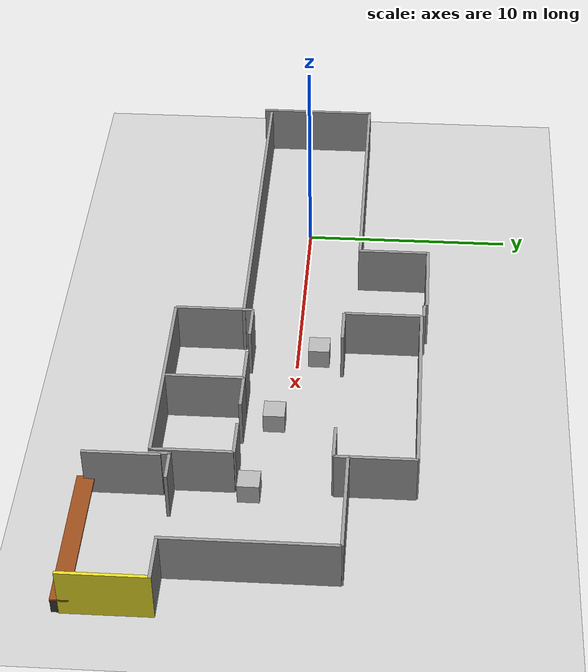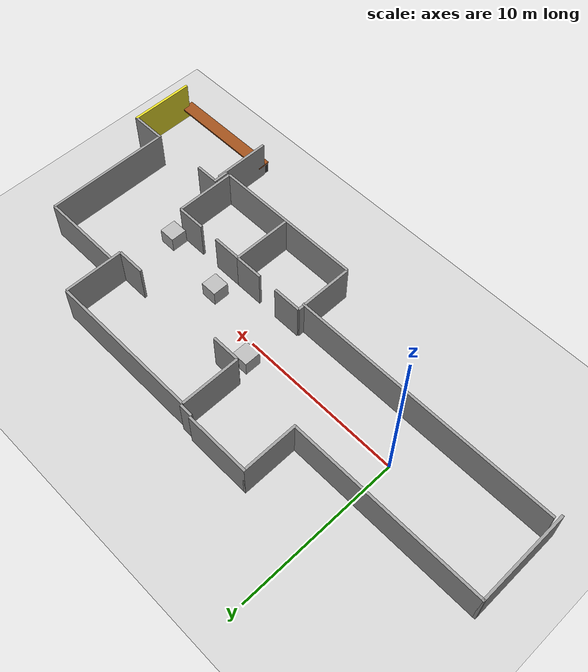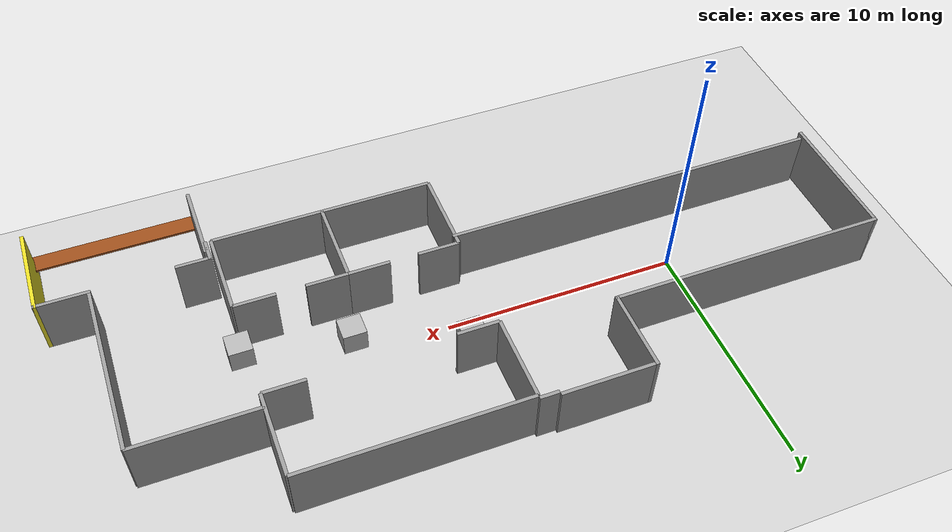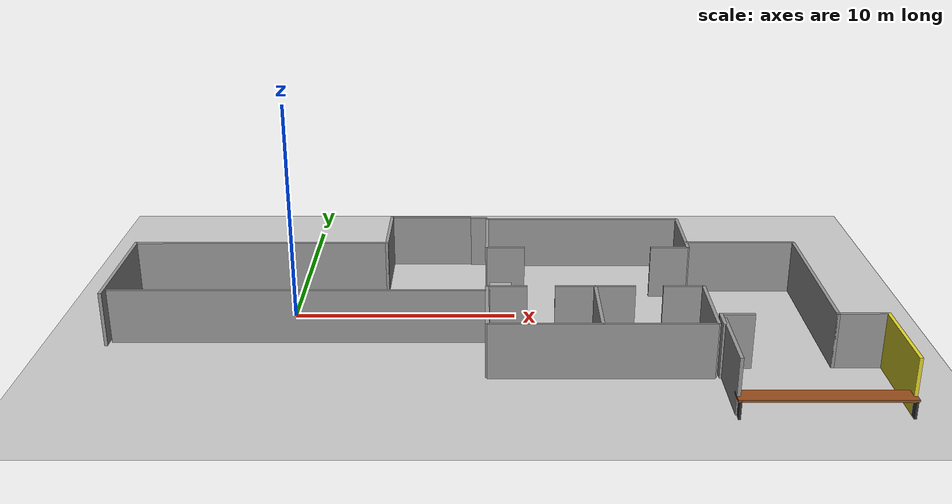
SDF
<sdf version='1.10'>
  <world name='warehouse_world'>
    <gravity>0 0 -9.8000000000000007</gravity>
    <magnetic_field>5.5644999999999998e-06 2.2875799999999999e-05 -4.2388400000000002e-05</magnetic_field>
    <atmosphere type='adiabatic'/>
    <physics type='ode'>
      <max_step_size>0.001</max_step_size>
      <real_time_factor>1</real_time_factor>
      <real_time_update_rate>1000</real_time_update_rate>
    </physics>
    <scene>
      <ambient>0.400000006 0.400000006 0.400000006 1</ambient>
      <background>0.699999988 0.699999988 0.699999988 1</background>
      <shadows>true</shadows>
    </scene>
    <model name='ground_plane'>
      <static>true</static>
      <link name='link'>
        <collision name='collision'>
          <geometry>
            <plane>
              <normal>0 0 1</normal>
              <size>100 100</size>
            </plane>
          </geometry>
          <surface>
            <friction>
              <ode/>
            </friction>
            <bounce/>
            <contact/>
          </surface>
        </collision>
        <visual name='visual'>
          <geometry>
            <plane>
              <normal>0 0 1</normal>
              <size>100 100</size>
            </plane>
          </geometry>
          <material>
            <ambient>0.800000012 0.800000012 0.800000012 1</ambient>
            <diffuse>0.800000012 0.800000012 0.800000012 1</diffuse>
            <specular>0.800000012 0.800000012 0.800000012 1</specular>
          </material>
        </visual>
        <pose>0 0 0 0 0 0</pose>
        <inertial>
          <pose>0 0 0 0 0 0</pose>
          <mass>1</mass>
          <inertia>
            <ixx>1</ixx>
            <ixy>0</ixy>
            <ixz>0</ixz>
            <iyy>1</iyy>
            <iyz>0</iyz>
            <izz>1</izz>
          </inertia>
        </inertial>
        <enable_wind>false</enable_wind>
      </link>
      <pose>0 0 0 0 0 0</pose>
      <self_collide>false</self_collide>
    </model>
    <model name='warehouse'>
      <pose>8.7374600000000058 -1.3317999999999914 0 0 0 1.4432899320127035e-15</pose>
      <link name='Wall_11'>
        <collision name='Wall_11_Collision'>
          <geometry>
            <box>
              <size>3.5 0.14999999999999999 2.5</size>
            </box>
          </geometry>
          <pose>0 0 1.25 0 0 0</pose>
          <surface>
            <friction>
              <ode/>
            </friction>
            <bounce/>
            <contact/>
          </surface>
        </collision>
        <visual name='Wall_11_Visual'>
          <pose>0 0 1.25 0 0 0</pose>
          <geometry>
            <box>
              <size>3.5 0.14999999999999999 2.5</size>
            </box>
          </geometry>
          <material>
            <script>
              <uri>file://media/materials/scripts/gazebo.material</uri>
              <name>Gazebo/Grey</name>
            </script>
            <ambient>1 1 1 1</ambient>
          </material>
          <meta>
            <layer>0</layer>
          </meta>
        </visual>
        <pose>-4.7249999999999996 5.7249999999999996 0 0 0 1.5708</pose>
        <inertial>
          <pose>0 0 0 0 0 0</pose>
          <mass>1</mass>
          <inertia>
            <ixx>1</ixx>
            <ixy>0</ixy>
            <ixz>0</ixz>
            <iyy>1</iyy>
            <iyz>0</iyz>
            <izz>1</izz>
          </inertia>
        </inertial>
        <enable_wind>false</enable_wind>
      </link>
      <link name='Wall_12'>
        <collision name='Wall_12_Collision'>
          <geometry>
            <box>
              <size>4 0.14999999999999999 2.5</size>
            </box>
          </geometry>
          <pose>0 0 1.25 0 0 0</pose>
          <surface>
            <friction>
              <ode/>
            </friction>
            <bounce/>
            <contact/>
          </surface>
        </collision>
        <visual name='Wall_12_Visual'>
          <pose>0 0 1.25 0 0 0</pose>
          <geometry>
            <box>
              <size>4 0.14999999999999999 2.5</size>
            </box>
          </geometry>
          <material>
            <script>
              <uri>file://media/materials/scripts/gazebo.material</uri>
              <name>Gazebo/Grey</name>
            </script>
            <ambient>1 1 1 1</ambient>
          </material>
          <meta>
            <layer>0</layer>
          </meta>
        </visual>
        <pose>-2.7999999999999909 7.3999999999999959 0 0 0 -1.4432899320127037e-15</pose>
        <inertial>
          <pose>0 0 0 0 0 0</pose>
          <mass>1</mass>
          <inertia>
            <ixx>1</ixx>
            <ixy>0</ixy>
            <ixz>0</ixz>
            <iyy>1</iyy>
            <iyz>0</iyz>
            <izz>1</izz>
          </inertia>
        </inertial>
        <enable_wind>false</enable_wind>
      </link>
      <link name='Connector_North_12'>
        <pose>-0.39999999999999503 7.2799999999999923 0 0 0 -1.4432899320127037e-15</pose>
        <collision name='c'>
          <geometry>
            <box>
              <size>0.80000000000000004 0.14999999999999999 2.5</size>
            </box>
          </geometry>
          <pose>0 0 1.25 0 0 0</pose>
          <surface>
            <friction>
              <ode/>
            </friction>
            <bounce/>
            <contact/>
          </surface>
        </collision>
        <visual name='v'>
          <geometry>
            <box>
              <size>0.80000000000000004 0.14999999999999999 2.5</size>
            </box>
          </geometry>
          <pose>0 0 1.25 0 0 0</pose>
          <material>
            <script>
              <uri>file://media/materials/scripts/gazebo.material</uri>
              <name>Gazebo/Grey</name>
            </script>
          </material>
        </visual>
        <inertial>
          <pose>0 0 0 0 0 0</pose>
          <mass>1</mass>
          <inertia>
            <ixx>1</ixx>
            <ixy>0</ixy>
            <ixz>0</ixz>
            <iyy>1</iyy>
            <iyz>0</iyz>
            <izz>1</izz>
          </inertia>
        </inertial>
        <enable_wind>false</enable_wind>
      </link>
      <link name='Wall_15'>
        <collision name='Wall_15_Collision'>
          <geometry>
            <box>
              <size>7.75 0.14999999999999999 2.5</size>
            </box>
          </geometry>
          <pose>0 0 1.25 0 0 0</pose>
          <surface>
            <friction>
              <ode/>
            </friction>
            <bounce/>
            <contact/>
          </surface>
        </collision>
        <visual name='Wall_15_Visual'>
          <pose>0 0 1.25 0 0 0</pose>
          <geometry>
            <box>
              <size>7.75 0.14999999999999999 2.5</size>
            </box>
          </geometry>
          <material>
            <script>
              <uri>file://media/materials/scripts/gazebo.material</uri>
              <name>Gazebo/Grey</name>
            </script>
            <ambient>1 1 1 1</ambient>
          </material>
          <meta>
            <layer>0</layer>
          </meta>
        </visual>
        <pose>14.475000000000003 0.24999999999997047 0 0 0 -1.5708000000000026</pose>
        <inertial>
          <pose>0 0 0 0 0 0</pose>
          <mass>1</mass>
          <inertia>
            <ixx>1</ixx>
            <ixy>0</ixy>
            <ixz>0</ixz>
            <iyy>1</iyy>
            <iyz>0</iyz>
            <izz>1</izz>
          </inertia>
        </inertial>
        <enable_wind>false</enable_wind>
      </link>
      <link name='Wall_16'>
        <collision name='Wall_16_Collision'>
          <geometry>
            <box>
              <size>2.25 0.14999999999999999 2.5</size>
            </box>
          </geometry>
          <pose>0 0 1.25 0 0 0</pose>
          <surface>
            <friction>
              <ode/>
            </friction>
            <bounce/>
            <contact/>
          </surface>
        </collision>
        <visual name='Wall_16_Visual'>
          <pose>0 0 1.25 0 0 0</pose>
          <geometry>
            <box>
              <size>2.25 0.14999999999999999 2.5</size>
            </box>
          </geometry>
          <material>
            <script>
              <uri>file://media/materials/scripts/gazebo.material</uri>
              <name>Gazebo/Grey</name>
            </script>
            <ambient>1 1 1 1</ambient>
          </material>
          <meta>
            <layer>0</layer>
          </meta>
        </visual>
        <pose>15.524999999999993 -3.5500000000000318 0 0 0 -1.4432899320127037e-15</pose>
        <inertial>
          <pose>0 0 0 0 0 0</pose>
          <mass>1</mass>
          <inertia>
            <ixx>1</ixx>
            <ixy>0</ixy>
            <ixz>0</ixz>
            <iyy>1</iyy>
            <iyz>0</iyz>
            <izz>1</izz>
          </inertia>
        </inertial>
        <enable_wind>false</enable_wind>
      </link>
      <link name='Wall_17'>
        <collision name='Wall_17_Collision'>
          <geometry>
            <box>
              <size>4 0.14999999999999999 2.5</size>
            </box>
          </geometry>
          <pose>0 0 1.25 0 0 0</pose>
          <surface>
            <friction>
              <ode/>
            </friction>
            <bounce/>
            <contact/>
          </surface>
        </collision>
        <visual name='Wall_17_Visual'>
          <pose>0 0 1.25 0 0 0</pose>
          <geometry>
            <box>
              <size>4 0.14999999999999999 2.5</size>
            </box>
          </geometry>
          <material>
            <script>
              <uri>file://media/materials/scripts/gazebo.material</uri>
              <name>Gazebo/Yellow</name>
            </script>
            <ambient>1 1 1 1</ambient>
          </material>
          <meta>
            <layer>0</layer>
          </meta>
        </visual>
        <pose>16.574999999999989 -5.4750000000000325 0 0 0 -1.5708000000000026</pose>
        <inertial>
          <pose>0 0 0 0 0 0</pose>
          <mass>1</mass>
          <inertia>
            <ixx>1</ixx>
            <ixy>0</ixy>
            <ixz>0</ixz>
            <iyy>1</iyy>
            <iyz>0</iyz>
            <izz>1</izz>
          </inertia>
        </inertial>
        <enable_wind>false</enable_wind>
      </link>
      <link name='IT_Service_Table'>
        <pose>13.149999999999986 -7.4000000000000314 0 0 0 3.1415899999999986</pose>
        <collision name='solid_base_collision'>
          <pose>0 0 0.40000000000000002 0 0 0</pose>
          <geometry>
            <box>
              <size>7 0.80000000000000004 0.80000000000000004</size>
            </box>
          </geometry>
          <surface>
            <friction>
              <ode/>
            </friction>
            <bounce/>
            <contact/>
          </surface>
        </collision>
        <visual name='visual_top'>
          <pose>0 0 0.80000000000000004 0 0 0</pose>
          <geometry>
            <box>
              <size>7 0.80000000000000004 0.10000000000000001</size>
            </box>
          </geometry>
          <material>
            <ambient>0.600000024 0.300000012 0.100000001 1</ambient>
            <diffuse>0.600000024 0.300000012 0.100000001 1</diffuse>
          </material>
        </visual>
        <visual name='visual_leg1'>
          <pose>-3.3999999999999999 0 0.40000000000000002 0 0 0</pose>
          <geometry>
            <box>
              <size>0.10000000000000001 0.80000000000000004 0.80000000000000004</size>
            </box>
          </geometry>
          <material>
            <ambient>0.200000003 0.200000003 0.200000003 1</ambient>
          </material>
        </visual>
        <visual name='visual_leg2'>
          <pose>3.3999999999999999 0 0.40000000000000002 0 0 0</pose>
          <geometry>
            <box>
              <size>0.10000000000000001 0.80000000000000004 0.80000000000000004</size>
            </box>
          </geometry>
          <material>
            <ambient>0.200000003 0.200000003 0.200000003 1</ambient>
          </material>
        </visual>
        <inertial>
          <pose>0 0 0 0 0 0</pose>
          <mass>1</mass>
          <inertia>
            <ixx>1</ixx>
            <ixy>0</ixy>
            <ixz>0</ixz>
            <iyy>1</iyy>
            <iyz>0</iyz>
            <izz>1</izz>
          </inertia>
        </inertial>
        <enable_wind>false</enable_wind>
      </link>
      <link name='Wall_19'>
        <collision name='Wall_19_Collision'>
          <geometry>
            <box>
              <size>3.5 0.14999999999999999 2.5</size>
            </box>
          </geometry>
          <pose>0 0 1.25 0 0 0</pose>
          <surface>
            <friction>
              <ode/>
            </friction>
            <bounce/>
            <contact/>
          </surface>
        </collision>
        <visual name='Wall_19_Visual'>
          <pose>0 0 1.25 0 0 0</pose>
          <geometry>
            <box>
              <size>3.5 0.14999999999999999 2.5</size>
            </box>
          </geometry>
          <material>
            <script>
              <uri>file://media/materials/scripts/gazebo.material</uri>
              <name>Gazebo/Grey</name>
            </script>
            <ambient>1 1 1 1</ambient>
          </material>
          <meta>
            <layer>0</layer>
          </meta>
        </visual>
        <pose>9.724999999999989 -5.7250000000000218 0 0 0 1.5707999999999993</pose>
        <inertial>
          <pose>0 0 0 0 0 0</pose>
          <mass>1</mass>
          <inertia>
            <ixx>1</ixx>
            <ixy>0</ixy>
            <ixz>0</ixz>
            <iyy>1</iyy>
            <iyz>0</iyz>
            <izz>1</izz>
          </inertia>
        </inertial>
        <enable_wind>false</enable_wind>
      </link>
      <link name='Wall_28'>
        <collision name='Wall_28_Collision'>
          <geometry>
            <box>
              <size>16.5 0.14999999999999999 2.5</size>
            </box>
          </geometry>
          <pose>0 0 1.25 0 0 0</pose>
          <surface>
            <friction>
              <ode/>
            </friction>
            <bounce/>
            <contact/>
          </surface>
        </collision>
        <visual name='Wall_28_Visual'>
          <pose>0 0 1.25 0 0 0</pose>
          <geometry>
            <box>
              <size>16.5 0.14999999999999999 2.5</size>
            </box>
          </geometry>
          <material>
            <script>
              <uri>file://media/materials/scripts/gazebo.material</uri>
              <name>Gazebo/Grey</name>
            </script>
            <ambient>1 1 1 1</ambient>
          </material>
          <meta>
            <layer>0</layer>
          </meta>
        </visual>
        <pose>-8.1387900000000037 -1.2623699999999973 0 0 0 -1.4432899320127037e-15</pose>
        <inertial>
          <pose>0 0 0 0 0 0</pose>
          <mass>1</mass>
          <inertia>
            <ixx>1</ixx>
            <ixy>0</ixy>
            <ixz>0</ixz>
            <iyy>1</iyy>
            <iyz>0</iyz>
            <izz>1</izz>
          </inertia>
        </inertial>
        <enable_wind>false</enable_wind>
      </link>
      <link name='Wall_34'>
        <collision name='Wall_34_Collision'>
          <geometry>
            <box>
              <size>1.5 0.14999999999999999 2.5</size>
            </box>
          </geometry>
          <pose>0 0 1.25 0 0 0</pose>
          <surface>
            <friction>
              <ode/>
            </friction>
            <bounce/>
            <contact/>
          </surface>
        </collision>
        <visual name='Wall_34_Visual'>
          <pose>0 0 1.25 0 0 0</pose>
          <geometry>
            <box>
              <size>1.5 0.14999999999999999 2.5</size>
            </box>
          </geometry>
          <material>
            <script>
              <uri>file://media/materials/scripts/gazebo.material</uri>
              <name>Gazebo/Grey</name>
            </script>
            <ambient>1 1 1 1</ambient>
          </material>
          <meta>
            <layer>0</layer>
          </meta>
        </visual>
        <pose>10.311199999999987 -3.6123700000000225 0 0 0 3.1415899999999986</pose>
        <inertial>
          <pose>0 0 0 0 0 0</pose>
          <mass>1</mass>
          <inertia>
            <ixx>1</ixx>
            <ixy>0</ixy>
            <ixz>0</ixz>
            <iyy>1</iyy>
            <iyz>0</iyz>
            <izz>1</izz>
          </inertia>
        </inertial>
        <enable_wind>false</enable_wind>
      </link>
      <link name='Wall_35'>
        <collision name='Wall_35_Collision'>
          <geometry>
            <box>
              <size>1 0.14999999999999999 2.5</size>
            </box>
          </geometry>
          <pose>0 0 1.25 0 0 0</pose>
          <surface>
            <friction>
              <ode/>
            </friction>
            <bounce/>
            <contact/>
          </surface>
        </collision>
        <visual name='Wall_35_Visual'>
          <pose>0 0 1.25 0 0 0</pose>
          <geometry>
            <box>
              <size>1 0.14999999999999999 2.5</size>
            </box>
          </geometry>
          <material>
            <script>
              <uri>file://media/materials/scripts/gazebo.material</uri>
              <name>Gazebo/Grey</name>
            </script>
            <ambient>1 1 1 1</ambient>
          </material>
          <meta>
            <layer>0</layer>
          </meta>
        </visual>
        <pose>9.6362099999999895 -4.0373700000000232 0 0 0 -1.5708000000000026</pose>
        <inertial>
          <pose>0 0 0 0 0 0</pose>
          <mass>1</mass>
          <inertia>
            <ixx>1</ixx>
            <ixy>0</ixy>
            <ixz>0</ixz>
            <iyy>1</iyy>
            <iyz>0</iyz>
            <izz>1</izz>
          </inertia>
        </inertial>
        <enable_wind>false</enable_wind>
      </link>
      <link name='Wall_38'>
        <collision name='Wall_38_Collision'>
          <geometry>
            <box>
              <size>5.75 0.14999999999999999 2.5</size>
            </box>
          </geometry>
          <pose>0 0 1.25 0 0 0</pose>
          <surface>
            <friction>
              <ode/>
            </friction>
            <bounce/>
            <contact/>
          </surface>
        </collision>
        <visual name='Wall_38_Visual'>
          <pose>0 0 1.25 0 0 0</pose>
          <geometry>
            <box>
              <size>5.75 0.14999999999999999 2.5</size>
            </box>
          </geometry>
          <material>
            <script>
              <uri>file://media/materials/scripts/gazebo.material</uri>
              <name>Gazebo/Grey</name>
            </script>
            <ambient>1 1 1 1</ambient>
          </material>
          <meta>
            <layer>0</layer>
          </meta>
        </visual>
        <pose>-16.574999999999999 1.2500000000000151 0 0 0 -1.5708000000000026</pose>
        <inertial>
          <pose>0 0 0 0 0 0</pose>
          <mass>1</mass>
          <inertia>
            <ixx>1</ixx>
            <ixy>0</ixy>
            <ixz>0</ixz>
            <iyy>1</iyy>
            <iyz>0</iyz>
            <izz>1</izz>
          </inertia>
        </inertial>
        <enable_wind>false</enable_wind>
      </link>
      <link name='Wall_7'>
        <collision name='Wall_7_Collision'>
          <geometry>
            <box>
              <size>12 0.14999999999999999 2.5</size>
            </box>
          </geometry>
          <pose>0 0 1.25 0 0 0</pose>
          <surface>
            <friction>
              <ode/>
            </friction>
            <bounce/>
            <contact/>
          </surface>
        </collision>
        <visual name='Wall_7_Visual'>
          <pose>0 0 1.25 0 0 0</pose>
          <geometry>
            <box>
              <size>12 0.14999999999999999 2.5</size>
            </box>
          </geometry>
          <material>
            <script>
              <uri>file://media/materials/scripts/gazebo.material</uri>
              <name>Gazebo/Grey</name>
            </script>
            <ambient>1 1 1 1</ambient>
          </material>
          <meta>
            <layer>0</layer>
          </meta>
        </visual>
        <pose>-10.649999999999999 4.0500000000000069 0 0 0 -1.4432899320127037e-15</pose>
        <inertial>
          <pose>0 0 0 0 0 0</pose>
          <mass>1</mass>
          <inertia>
            <ixx>1</ixx>
            <ixy>0</ixy>
            <ixz>0</ixz>
            <iyy>1</iyy>
            <iyz>0</iyz>
            <izz>1</izz>
          </inertia>
        </inertial>
        <enable_wind>false</enable_wind>
      </link>
      <link name='Connector_Wall_15_East'>
        <pose>11.950000000000005 4.1249999999999734 0 0 0 -1.4432899320127037e-15</pose>
        <collision name='c'>
          <geometry>
            <box>
              <size>5.0999999999999996 0.14999999999999999 2.5</size>
            </box>
          </geometry>
          <pose>0 0 1.25 0 0 0</pose>
          <surface>
            <friction>
              <ode/>
            </friction>
            <bounce/>
            <contact/>
          </surface>
        </collision>
        <visual name='v'>
          <geometry>
            <box>
              <size>5.0999999999999996 0.14999999999999999 2.5</size>
            </box>
          </geometry>
          <pose>0 0 1.25 0 0 0</pose>
          <material>
            <script>
              <uri>file://media/materials/scripts/gazebo.material</uri>
              <name>Gazebo/Grey</name>
            </script>
          </material>
        </visual>
        <inertial>
          <pose>0 0 0 0 0 0</pose>
          <mass>1</mass>
          <inertia>
            <ixx>1</ixx>
            <ixy>0</ixy>
            <ixz>0</ixz>
            <iyy>1</iyy>
            <iyz>0</iyz>
            <izz>1</izz>
          </inertia>
        </inertial>
        <enable_wind>false</enable_wind>
      </link>
      <link name='Top_Block_North'>
        <pose>4.7000000000000046 7.159999999999985 0 0 0 -1.4432899320127037e-15</pose>
        <visual name='v'>
          <geometry>
            <box>
              <size>9.4000000000000004 0.14999999999999999 2.5</size>
            </box>
          </geometry>
          <pose>0 0 1.25 0 0 0</pose>
          <material>
            <script>
              <uri>file://media/materials/scripts/gazebo.material</uri>
              <name>Gazebo/Grey</name>
            </script>
          </material>
        </visual>
        <collision name='c'>
          <geometry>
            <box>
              <size>9.4000000000000004 0.14999999999999999 2.5</size>
            </box>
          </geometry>
          <pose>0 0 1.25 0 0 0</pose>
          <surface>
            <friction>
              <ode/>
            </friction>
            <bounce/>
            <contact/>
          </surface>
        </collision>
        <inertial>
          <pose>0 0 0 0 0 0</pose>
          <mass>1</mass>
          <inertia>
            <ixx>1</ixx>
            <ixy>0</ixy>
            <ixz>0</ixz>
            <iyy>1</iyy>
            <iyz>0</iyz>
            <izz>1</izz>
          </inertia>
        </inertial>
        <enable_wind>false</enable_wind>
      </link>
      <link name='Top_Block_West'>
        <pose>7.1054273576010019e-15 5.3299999999999912 0 0 0 1.5707999999999993</pose>
        <visual name='v'>
          <geometry>
            <box>
              <size>3.6600000000000001 0.14999999999999999 2.5</size>
            </box>
          </geometry>
          <pose>0 0 1.25 0 0 0</pose>
          <material>
            <script>
              <uri>file://media/materials/scripts/gazebo.material</uri>
              <name>Gazebo/Grey</name>
            </script>
          </material>
        </visual>
        <collision name='c'>
          <geometry>
            <box>
              <size>3.6600000000000001 0.14999999999999999 2.5</size>
            </box>
          </geometry>
          <pose>0 0 1.25 0 0 0</pose>
          <surface>
            <friction>
              <ode/>
            </friction>
            <bounce/>
            <contact/>
          </surface>
        </collision>
        <inertial>
          <pose>0 0 0 0 0 0</pose>
          <mass>1</mass>
          <inertia>
            <ixx>1</ixx>
            <ixy>0</ixy>
            <ixz>0</ixz>
            <iyy>1</iyy>
            <iyz>0</iyz>
            <izz>1</izz>
          </inertia>
        </inertial>
        <enable_wind>false</enable_wind>
      </link>
      <link name='Top_Block_East'>
        <pose>9.4000000000000039 5.3299999999999779 0 0 0 1.5707999999999993</pose>
        <visual name='v'>
          <geometry>
            <box>
              <size>3.6600000000000001 0.14999999999999999 2.5</size>
            </box>
          </geometry>
          <pose>0 0 1.25 0 0 0</pose>
          <material>
            <script>
              <uri>file://media/materials/scripts/gazebo.material</uri>
              <name>Gazebo/Grey</name>
            </script>
          </material>
        </visual>
        <collision name='c'>
          <geometry>
            <box>
              <size>3.6600000000000001 0.14999999999999999 2.5</size>
            </box>
          </geometry>
          <pose>0 0 1.25 0 0 0</pose>
          <surface>
            <friction>
              <ode/>
            </friction>
            <bounce/>
            <contact/>
          </surface>
        </collision>
        <inertial>
          <pose>0 0 0 0 0 0</pose>
          <mass>1</mass>
          <inertia>
            <ixx>1</ixx>
            <ixy>0</ixy>
            <ixz>0</ixz>
            <iyy>1</iyy>
            <iyz>0</iyz>
            <izz>1</izz>
          </inertia>
        </inertial>
        <enable_wind>false</enable_wind>
      </link>
      <link name='Top_Block_South_1a'>
        <pose>0.87500000000000178 3.4999999999999902 0 0 0 -1.4432899320127037e-15</pose>
        <visual name='v'>
          <geometry>
            <box>
              <size>1.75 0.14999999999999999 2.5</size>
            </box>
          </geometry>
          <pose>0 0 1.25 0 0 0</pose>
          <material>
            <script>
              <uri>file://media/materials/scripts/gazebo.material</uri>
              <name>Gazebo/Grey</name>
            </script>
          </material>
        </visual>
        <collision name='c'>
          <geometry>
            <box>
              <size>1.75 0.14999999999999999 2.5</size>
            </box>
          </geometry>
          <pose>0 0 1.25 0 0 0</pose>
          <surface>
            <friction>
              <ode/>
            </friction>
            <bounce/>
            <contact/>
          </surface>
        </collision>
        <inertial>
          <pose>0 0 0 0 0 0</pose>
          <mass>1</mass>
          <inertia>
            <ixx>1</ixx>
            <ixy>0</ixy>
            <ixz>0</ixz>
            <iyy>1</iyy>
            <iyz>0</iyz>
            <izz>1</izz>
          </inertia>
        </inertial>
        <enable_wind>false</enable_wind>
      </link>
      <link name='Top_Block_South_4b'>
        <pose>8.5249999999999968 3.4999999999999796 0 0 0 -1.4432899320127037e-15</pose>
        <visual name='v'>
          <geometry>
            <box>
              <size>1.75 0.14999999999999999 2.5</size>
            </box>
          </geometry>
          <pose>0 0 1.25 0 0 0</pose>
          <material>
            <script>
              <uri>file://media/materials/scripts/gazebo.material</uri>
              <name>Gazebo/Grey</name>
            </script>
          </material>
        </visual>
        <collision name='c'>
          <geometry>
            <box>
              <size>1.75 0.14999999999999999 2.5</size>
            </box>
          </geometry>
          <pose>0 0 1.25 0 0 0</pose>
          <surface>
            <friction>
              <ode/>
            </friction>
            <bounce/>
            <contact/>
          </surface>
        </collision>
        <inertial>
          <pose>0 0 0 0 0 0</pose>
          <mass>1</mass>
          <inertia>
            <ixx>1</ixx>
            <ixy>0</ixy>
            <ixz>0</ixz>
            <iyy>1</iyy>
            <iyz>0</iyz>
            <izz>1</izz>
          </inertia>
        </inertial>
        <enable_wind>false</enable_wind>
      </link>
      <link name='Bottom_Block_South'>
        <pose>4.699999999999994 -4.500000000000016 0 0 0 -1.4432899320127037e-15</pose>
        <visual name='v'>
          <geometry>
            <box>
              <size>9.4000000000000004 0.14999999999999999 2.5</size>
            </box>
          </geometry>
          <pose>0 0 1.25 0 0 0</pose>
          <material>
            <script>
              <uri>file://media/materials/scripts/gazebo.material</uri>
              <name>Gazebo/Grey</name>
            </script>
          </material>
        </visual>
        <collision name='c'>
          <geometry>
            <box>
              <size>9.4000000000000004 0.14999999999999999 2.5</size>
            </box>
          </geometry>
          <pose>0 0 1.25 0 0 0</pose>
          <surface>
            <friction>
              <ode/>
            </friction>
            <bounce/>
            <contact/>
          </surface>
        </collision>
        <inertial>
          <pose>0 0 0 0 0 0</pose>
          <mass>1</mass>
          <inertia>
            <ixx>1</ixx>
            <ixy>0</ixy>
            <ixz>0</ixz>
            <iyy>1</iyy>
            <iyz>0</iyz>
            <izz>1</izz>
          </inertia>
        </inertial>
        <enable_wind>false</enable_wind>
      </link>
      <link name='Bottom_Block_West'>
        <pose>-8.8817841970012523e-15 -2.6700000000000097 0 0 0 1.5707999999999993</pose>
        <visual name='v'>
          <geometry>
            <box>
              <size>3.6600000000000001 0.14999999999999999 2.5</size>
            </box>
          </geometry>
          <pose>0 0 1.25 0 0 0</pose>
          <material>
            <script>
              <uri>file://media/materials/scripts/gazebo.material</uri>
              <name>Gazebo/Grey</name>
            </script>
          </material>
        </visual>
        <collision name='c'>
          <geometry>
            <box>
              <size>3.6600000000000001 0.14999999999999999 2.5</size>
            </box>
          </geometry>
          <pose>0 0 1.25 0 0 0</pose>
          <surface>
            <friction>
              <ode/>
            </friction>
            <bounce/>
            <contact/>
          </surface>
        </collision>
        <inertial>
          <pose>0 0 0 0 0 0</pose>
          <mass>1</mass>
          <inertia>
            <ixx>1</ixx>
            <ixy>0</ixy>
            <ixz>0</ixz>
            <iyy>1</iyy>
            <iyz>0</iyz>
            <izz>1</izz>
          </inertia>
        </inertial>
        <enable_wind>false</enable_wind>
      </link>
      <link name='Bottom_Block_Mid'>
        <pose>4.6999999999999904 -2.6700000000000168 0 0 0 1.5707999999999993</pose>
        <visual name='v'>
          <geometry>
            <box>
              <size>3.6600000000000001 0.14999999999999999 2.5</size>
            </box>
          </geometry>
          <pose>0 0 1.25 0 0 0</pose>
          <material>
            <script>
              <uri>file://media/materials/scripts/gazebo.material</uri>
              <name>Gazebo/Grey</name>
            </script>
          </material>
        </visual>
        <collision name='c'>
          <geometry>
            <box>
              <size>3.6600000000000001 0.14999999999999999 2.5</size>
            </box>
          </geometry>
          <pose>0 0 1.25 0 0 0</pose>
          <surface>
            <friction>
              <ode/>
            </friction>
            <bounce/>
            <contact/>
          </surface>
        </collision>
        <inertial>
          <pose>0 0 0 0 0 0</pose>
          <mass>1</mass>
          <inertia>
            <ixx>1</ixx>
            <ixy>0</ixy>
            <ixz>0</ixz>
            <iyy>1</iyy>
            <iyz>0</iyz>
            <izz>1</izz>
          </inertia>
        </inertial>
        <enable_wind>false</enable_wind>
      </link>
      <link name='Bottom_Block_East'>
        <pose>9.3999999999999932 -2.6700000000000239 0 0 0 1.5707999999999993</pose>
        <visual name='v'>
          <geometry>
            <box>
              <size>3.6600000000000001 0.14999999999999999 2.5</size>
            </box>
          </geometry>
          <pose>0 0 1.25 0 0 0</pose>
          <material>
            <script>
              <uri>file://media/materials/scripts/gazebo.material</uri>
              <name>Gazebo/Grey</name>
            </script>
          </material>
        </visual>
        <collision name='c'>
          <geometry>
            <box>
              <size>3.6600000000000001 0.14999999999999999 2.5</size>
            </box>
          </geometry>
          <pose>0 0 1.25 0 0 0</pose>
          <surface>
            <friction>
              <ode/>
            </friction>
            <bounce/>
            <contact/>
          </surface>
        </collision>
        <inertial>
          <pose>0 0 0 0 0 0</pose>
          <mass>1</mass>
          <inertia>
            <ixx>1</ixx>
            <ixy>0</ixy>
            <ixz>0</ixz>
            <iyy>1</iyy>
            <iyz>0</iyz>
            <izz>1</izz>
          </inertia>
        </inertial>
        <enable_wind>false</enable_wind>
      </link>
      <link name='Bottom_Block_North_3a'>
        <pose>0.87499999999999822 -0.84000000000001029 0 0 0 -1.4432899320127037e-15</pose>
        <visual name='v'>
          <geometry>
            <box>
              <size>1.75 0.14999999999999999 2.5</size>
            </box>
          </geometry>
          <pose>0 0 1.25 0 0 0</pose>
          <material>
            <script>
              <uri>file://media/materials/scripts/gazebo.material</uri>
              <name>Gazebo/Grey</name>
            </script>
          </material>
        </visual>
        <collision name='c'>
          <geometry>
            <box>
              <size>1.75 0.14999999999999999 2.5</size>
            </box>
          </geometry>
          <pose>0 0 1.25 0 0 0</pose>
          <surface>
            <friction>
              <ode/>
            </friction>
            <bounce/>
            <contact/>
          </surface>
        </collision>
        <inertial>
          <pose>0 0 0 0 0 0</pose>
          <mass>1</mass>
          <inertia>
            <ixx>1</ixx>
            <ixy>0</ixy>
            <ixz>0</ixz>
            <iyy>1</iyy>
            <iyz>0</iyz>
            <izz>1</izz>
          </inertia>
        </inertial>
        <enable_wind>false</enable_wind>
      </link>
      <link name='Bottom_Block_North_3b'>
        <pose>3.8249999999999975 -0.84000000000001385 0 0 0 -1.4432899320127037e-15</pose>
        <visual name='v'>
          <geometry>
            <box>
              <size>1.75 0.14999999999999999 2.5</size>
            </box>
          </geometry>
          <pose>0 0 1.25 0 0 0</pose>
          <material>
            <script>
              <uri>file://media/materials/scripts/gazebo.material</uri>
              <name>Gazebo/Grey</name>
            </script>
          </material>
        </visual>
        <collision name='c'>
          <geometry>
            <box>
              <size>1.75 0.14999999999999999 2.5</size>
            </box>
          </geometry>
          <pose>0 0 1.25 0 0 0</pose>
          <surface>
            <friction>
              <ode/>
            </friction>
            <bounce/>
            <contact/>
          </surface>
        </collision>
        <inertial>
          <pose>0 0 0 0 0 0</pose>
          <mass>1</mass>
          <inertia>
            <ixx>1</ixx>
            <ixy>0</ixy>
            <ixz>0</ixz>
            <iyy>1</iyy>
            <iyz>0</iyz>
            <izz>1</izz>
          </inertia>
        </inertial>
        <enable_wind>false</enable_wind>
      </link>
      <link name='Bottom_Block_North_2a'>
        <pose>5.5749999999999975 -0.84000000000001696 0 0 0 -1.4432899320127037e-15</pose>
        <visual name='v'>
          <geometry>
            <box>
              <size>1.75 0.14999999999999999 2.5</size>
            </box>
          </geometry>
          <pose>0 0 1.25 0 0 0</pose>
          <material>
            <script>
              <uri>file://media/materials/scripts/gazebo.material</uri>
              <name>Gazebo/Grey</name>
            </script>
          </material>
        </visual>
        <collision name='c'>
          <geometry>
            <box>
              <size>1.75 0.14999999999999999 2.5</size>
            </box>
          </geometry>
          <pose>0 0 1.25 0 0 0</pose>
          <surface>
            <friction>
              <ode/>
            </friction>
            <bounce/>
            <contact/>
          </surface>
        </collision>
        <inertial>
          <pose>0 0 0 0 0 0</pose>
          <mass>1</mass>
          <inertia>
            <ixx>1</ixx>
            <ixy>0</ixy>
            <ixz>0</ixz>
            <iyy>1</iyy>
            <iyz>0</iyz>
            <izz>1</izz>
          </inertia>
        </inertial>
        <enable_wind>false</enable_wind>
      </link>
      <link name='Bottom_Block_North_2b'>
        <pose>8.5250000000000004 -0.84000000000002095 0 0 0 -1.4432899320127037e-15</pose>
        <visual name='v'>
          <geometry>
            <box>
              <size>1.75 0.14999999999999999 2.5</size>
            </box>
          </geometry>
          <pose>0 0 1.25 0 0 0</pose>
          <material>
            <script>
              <uri>file://media/materials/scripts/gazebo.material</uri>
              <name>Gazebo/Grey</name>
            </script>
          </material>
        </visual>
        <collision name='c'>
          <geometry>
            <box>
              <size>1.75 0.14999999999999999 2.5</size>
            </box>
          </geometry>
          <pose>0 0 1.25 0 0 0</pose>
          <surface>
            <friction>
              <ode/>
            </friction>
            <bounce/>
            <contact/>
          </surface>
        </collision>
        <inertial>
          <pose>0 0 0 0 0 0</pose>
          <mass>1</mass>
          <inertia>
            <ixx>1</ixx>
            <ixy>0</ixy>
            <ixz>0</ixz>
            <iyy>1</iyy>
            <iyz>0</iyz>
            <izz>1</izz>
          </inertia>
        </inertial>
        <enable_wind>false</enable_wind>
      </link>
      <static>true</static>
      <self_collide>false</self_collide>
    </model>
    <model name='box'>
      <pose>9.3703112011061833 1.0282140152552393 0.49999999980497606 1.0048033485058014e-21 -2.4640853465547739e-21 -3.9210766489770922e-22</pose>
      <link name='box_link'>
        <inertial>
          <inertia>
            <ixx>0.16666</ixx>
            <ixy>0</ixy>
            <ixz>0</ixz>
            <iyy>0.16666</iyy>
            <iyz>0</iyz>
            <izz>0.16666</izz>
          </inertia>
          <mass>1</mass>
          <pose>0 0 0 0 0 0</pose>
        </inertial>
        <collision name='box_collision'>
          <geometry>
            <box>
              <size>1 1 1</size>
            </box>
          </geometry>
          <surface>
            <friction>
              <ode/>
            </friction>
            <bounce/>
            <contact/>
          </surface>
        </collision>
        <visual name='box_visual'>
          <geometry>
            <box>
              <size>1 1 1</size>
            </box>
          </geometry>
          <material>
            <ambient>0.300000012 0.300000012 0.300000012 1</ambient>
            <diffuse>0.699999988 0.699999988 0.699999988 1</diffuse>
            <specular>1 1 1 1</specular>
          </material>
        </visual>
        <pose>0 0 0 0 0 0</pose>
        <enable_wind>false</enable_wind>
      </link>
      <static>false</static>
      <self_collide>false</self_collide>
    </model>
    <model name='box_0'>
      <pose>13.850607792246617 -0.76415547935624684 0.49999999980497606 1.0048033485058014e-21 -2.4640853465547739e-21 -3.9210766489770922e-22</pose>
      <link name='box_link'>
        <inertial>
          <inertia>
            <ixx>0.16666</ixx>
            <ixy>0</ixy>
            <ixz>0</ixz>
            <iyy>0.16666</iyy>
            <iyz>0</iyz>
            <izz>0.16666</izz>
          </inertia>
          <mass>1</mass>
          <pose>0 0 0 0 0 0</pose>
        </inertial>
        <collision name='box_collision'>
          <geometry>
            <box>
              <size>1 1 1</size>
            </box>
          </geometry>
          <surface>
            <friction>
              <ode/>
            </friction>
            <bounce/>
            <contact/>
          </surface>
        </collision>
        <visual name='box_visual'>
          <geometry>
            <box>
              <size>1 1 1</size>
            </box>
          </geometry>
          <material>
            <ambient>0.300000012 0.300000012 0.300000012 1</ambient>
            <diffuse>0.699999988 0.699999988 0.699999988 1</diffuse>
            <specular>1 1 1 1</specular>
          </material>
        </visual>
        <pose>0 0 0 0 0 0</pose>
        <enable_wind>false</enable_wind>
      </link>
      <static>false</static>
      <self_collide>false</self_collide>
    </model>
    <model name='box_1'>
      <pose>18.28200785867903 -1.5386353857330404 0.49999999980497606 1.0048033485058014e-21 -2.4640853465547739e-21 -3.9210766489770922e-22</pose>
      <link name='box_link'>
        <inertial>
          <inertia>
            <ixx>0.16666</ixx>
            <ixy>0</ixy>
            <ixz>0</ixz>
            <iyy>0.16666</iyy>
            <iyz>0</iyz>
            <izz>0.16666</izz>
          </inertia>
          <mass>1</mass>
          <pose>0 0 0 0 0 0</pose>
        </inertial>
        <collision name='box_collision'>
          <geometry>
            <box>
              <size>1 1 1</size>
            </box>
          </geometry>
          <surface>
            <friction>
              <ode/>
            </friction>
            <bounce/>
            <contact/>
          </surface>
        </collision>
        <visual name='box_visual'>
          <geometry>
            <box>
              <size>1 1 1</size>
            </box>
          </geometry>
          <material>
            <ambient>0.300000012 0.300000012 0.300000012 1</ambient>
            <diffuse>0.699999988 0.699999988 0.699999988 1</diffuse>
            <specular>1 1 1 1</specular>
          </material>
        </visual>
        <pose>0 0 0 0 0 0</pose>
        <enable_wind>false</enable_wind>
      </link>
      <static>false</static>
      <self_collide>false</self_collide>
    </model>

    <light name='sun' type='directional'>
      <pose>0 0 10 0 0 0</pose>
      <cast_shadows>true</cast_shadows>
      <intensity>1</intensity>
      <direction>-0.5 0.10000000000000001 -0.90000000000000002</direction>
      <diffuse>0.800000012 0.800000012 0.800000012 1</diffuse>
      <specular>0.200000003 0.200000003 0.200000003 1</specular>
      <attenuation>
        <range>10</range>
        <linear>1</linear>
        <constant>1</constant>
        <quadratic>0</quadratic>
      </attenuation>
      <spot>
        <inner_angle>0</inner_angle>
        <outer_angle>0</outer_angle>
        <falloff>0</falloff>
      </spot>
    </light>
  </world>
</sdf>
